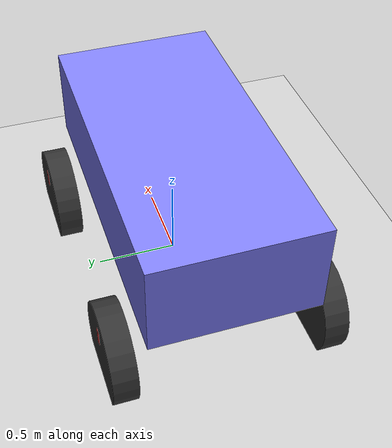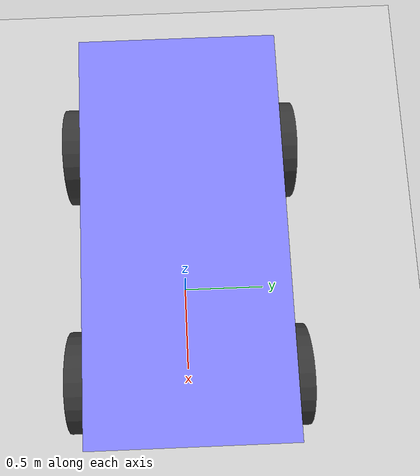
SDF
<?xml version="1.0" ?>
<sdf version="1.8">
  <world name="demo">
    <plugin
      filename="ignition-gazebo-physics-system"
      name="ignition::gazebo::systems::Physics">
    </plugin>
    <plugin
      filename="ignition-gazebo-sensors-system"
      name="ignition::gazebo::systems::Sensors">
      <render_engine>ogre2</render_engine>
    </plugin>
    <plugin
      filename="ignition-gazebo-scene-broadcaster-system"
      name="ignition::gazebo::systems::SceneBroadcaster">
    </plugin>
    <plugin
      filename="ignition-gazebo-user-commands-system"
      name="ignition::gazebo::systems::UserCommands">
    </plugin>
    <plugin
      filename="BasicSystem"
      name="ros_gz_example_gazebo::BasicSystem">
    </plugin>
    <plugin
      filename="FullSystem"
      name="ros_gz_example_gazebo::FullSystem">
    </plugin>

    <light name="sun" type="directional">
      <cast_shadows>true</cast_shadows>
      <pose>0 0 10 0 0 0</pose>
      <diffuse>0.8 0.8 0.8 1</diffuse>
      <specular>0.2 0.2 0.2 1</specular>
      <attenuation>
        <range>1000</range>
        <constant>0.9</constant>
        <linear>0.01</linear>
        <quadratic>0.001</quadratic>
      </attenuation>
      <direction>-0.5 0.1 -0.9</direction>
    </light>

    <model name="ground_plane">
      <static>true</static>
      <link name="link">
        <collision name="collision">
          <geometry>
            <plane>
              <normal>0 0 1</normal>
              <size>100 100</size>
            </plane>
          </geometry>
        </collision>
        <visual name="visual">
          <geometry>
            <plane>
              <normal>0 0 1</normal>
              <size>100 100</size>
            </plane>
          </geometry>
          <material>
            <ambient>0.8 0.8 0.8 1</ambient>
            <diffuse>0.8 0.8 0.8 1</diffuse>
            <specular>0.8 0.8 0.8 1</specular>
          </material>
        </visual>
      </link>
    </model>

    <model name="diff_drive">
      <self_collide>true</self_collide>
      <pose>0 0 0.35 0 0 0</pose>
      <include merge="true">
        <uri>package://ros_gz_example_description/models/diff_drive</uri>
      </include>

      <plugin
        filename="ignition-gazebo-joint-state-publisher-system"
        name="ignition::gazebo::systems::JointStatePublisher">
      </plugin>

      <plugin
        filename="ignition-gazebo-pose-publisher-system"
        name="ignition::gazebo::systems::PosePublisher">
        <publish_link_pose>true</publish_link_pose>
        <use_pose_vector_msg>true</use_pose_vector_msg>
        <static_publisher>true</static_publisher>
        <static_update_frequency>1</static_update_frequency>
      </plugin>

      <plugin
        filename="ignition-gazebo-odometry-publisher-system"
        name="ignition::gazebo::systems::OdometryPublisher">
        <odom_frame>diff_drive/odom</odom_frame>
        <robot_base_frame>diff_drive</robot_base_frame>
      </plugin>
    </model>
  </world>
</sdf>

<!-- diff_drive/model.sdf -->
<sdf version="1.8">
  <model name='swerve_drive'>

    <!-- =========================== CHASSIS =========================== -->
    <link name='chassis'>
      <pose>-0.151427 0 0.43 0 0 0</pose>
      <inertial>
        <mass>1.14395</mass>
        <inertia>
          <ixx>0.126164</ixx>
          <ixy>0</ixy>
          <ixz>0</ixz>
          <iyy>0.416519</iyy>
          <iyz>0</iyz>
          <izz>0.481014</izz>
        </inertia>
      </inertial>
      <visual name='visual_chassis'>
        <geometry>
          <box>
            <size>2.01142 1 0.568726</size>
          </box>
        </geometry>
        <material>
          <ambient>0.5 0.5 1.0 1</ambient>
          <diffuse>0.5 0.5 1.0 1</diffuse>
          <specular>0.0 0.0 1.0 1</specular>
        </material>
      </visual>
      <collision name='collision_chassis'>
        <geometry>
          <box>
            <size>2.01142 1 0.568726</size>
          </box>
        </geometry>
      </collision>
    </link>

    <!-- =========================== LIDAR =========================== -->
    <link name="lidar_link">
      <pose>0 0 0.5 0 0 0</pose>
      <inertial>
        <mass>0.1</mass>
        <inertia>
          <ixx>0.000166667</ixx>
          <iyy>0.000166667</iyy>
          <izz>0.000166667</izz>
        </inertia>
      </inertial>
      <collision name="collision">
        <geometry>
          <box>
            <size>0.1 0.1 0.1</size>
          </box>
        </geometry>
      </collision>
      <visual name="visual">
        <geometry>
          <box>
            <size>0.1 0.1 0.1</size>
          </box>
        </geometry>
      </visual>
      <sensor name='gpu_lidar' type='gpu_lidar'>
        <pose>0 0 0 0 0 0</pose>
        <topic>scan</topic>
        <ignition_frame_id>swerve_drive/lidar_link</ignition_frame_id>
        <update_rate>10</update_rate>
        <lidar>
          <scan>
            <horizontal>
              <samples>640</samples>
              <resolution>1</resolution>
              <min_angle>-1.396263</min_angle>
              <max_angle>1.396263</max_angle>
            </horizontal>
            <vertical>
              <samples>1</samples>
              <resolution>1</resolution>
              <min_angle>0.0</min_angle>
              <max_angle>0.0</max_angle>
            </vertical>
          </scan>
          <range>
            <min>0.08</min>
            <max>10.0</max>
            <resolution>0.01</resolution>
          </range>
        </lidar>
        <visualize>true</visualize>
      </sensor>
    </link>

    <joint name='lidar_joint' type='fixed'>
      <parent>chassis</parent>
      <child>lidar_link</child>
    </joint>

    <link name='front_left_steering_link'>
      <pose>0.554283 0.625029 -0.025 0 0 0</pose>
      <inertial>
        <mass>0.5</mass>
        <inertia>
          <ixx>0.001</ixx>
          <ixy>0</ixy>
          <ixz>0</ixz>
          <iyy>0.001</iyy>
          <iyz>0</iyz>
          <izz>0.001</izz>
        </inertia>
      </inertial>
      <visual name='visual_front_left_steering'>
        <geometry>
          <cylinder>
            <radius>0.08</radius>
            <length>0.1</length>
          </cylinder>
        </geometry>
        <material>
          <ambient>0.8 0.2 0.2 1</ambient>
          <diffuse>0.8 0.2 0.2 1</diffuse>
          <specular>0.2 0.2 0.2 1</specular>
        </material>
      </visual>
      <collision name='collision_front_left_steering'>
        <geometry>
          <cylinder>
            <radius>0.08</radius>
            <length>0.1</length>
          </cylinder>
        </geometry>
      </collision>
    </link>

    <link name='front_left_wheel'>
      <pose>0.554283 0.625029 -0.175 -1.5707 0 0</pose>
      <inertial>
        <mass>2</mass>
        <inertia>
          <ixx>0.145833</ixx>
          <ixy>0</ixy>
          <ixz>0</ixz>
          <iyy>0.145833</iyy>
          <iyz>0</iyz>
          <izz>0.125</izz>
        </inertia>
      </inertial>
      <visual name='visual_front_left_wheel'>
        <geometry>
          <cylinder>
            <radius>0.3</radius>
            <length>0.15</length>
          </cylinder>
        </geometry>
        <material>
          <ambient>0.2 0.2 0.2 1</ambient>
          <diffuse>0.2 0.2 0.2 1</diffuse>
          <specular>0.2 0.2 0.2 1</specular>
        </material>
      </visual>
      <collision name='collision_front_left_wheel'>
        <geometry>
          <cylinder>
            <radius>0.3</radius>
            <length>0.15</length>
          </cylinder>
        </geometry>
        <surface>
          <friction>
            <ode>
              <mu>1.2</mu>
              <mu2>1.0</mu2>
              <fdir1>0 0 1</fdir1>
              <slip1>0.0</slip1>
              <slip2>0.0</slip2>
            </ode>
          </friction>
          <contact>
            <ode>
              <kp>1e6</kp>
              <kd>100</kd>
              <min_depth>0.001</min_depth>
            </ode>
          </contact>
        </surface>
      </collision>
    </link>

    <joint name='front_left_steering_joint' type='revolute'>
      <parent>chassis</parent>
      <child>front_left_steering_link</child>
      <axis>
        <xyz>0 0 1</xyz>
        <limit>
          <lower>-1e16</lower>
          <upper>1e16</upper>
          <effort>50</effort>
          <velocity>5</velocity>
        </limit>
        <dynamics>
          <damping>0.2</damping>
          <friction>0.05</friction>
        </dynamics>
      </axis>
    </joint>

    <joint name='front_left_wheel_joint' type='revolute'>
      <parent>front_left_steering_link</parent>
      <child>front_left_wheel</child>
      <axis>
        <xyz>0 0 1</xyz>
        <limit>
          <lower>-1.79769e+308</lower>
          <upper>1.79769e+308</upper>
          <effort>50</effort>
          <velocity>50</velocity>
        </limit>
        <dynamics>
          <damping>0.05</damping>
          <friction>0.02</friction>
        </dynamics>
      </axis>
    </joint>

    <link name='front_right_steering_link'>
      <pose>0.554283 -0.625029 -0.025 0 0 0</pose>
      <inertial>
        <mass>0.5</mass>
        <inertia>
          <ixx>0.001</ixx>
          <ixy>0</ixy>
          <ixz>0</ixz>
          <iyy>0.001</iyy>
          <iyz>0</iyz>
          <izz>0.001</izz>
        </inertia>
      </inertial>
      <visual name='visual_front_right_steering'>
        <geometry>
          <cylinder>
            <radius>0.08</radius>
            <length>0.1</length>
          </cylinder>
        </geometry>
        <material>
          <ambient>0.8 0.2 0.2 1</ambient>
          <diffuse>0.8 0.2 0.2 1</diffuse>
          <specular>0.2 0.2 0.2 1</specular>
        </material>
      </visual>
      <collision name='collision_front_right_steering'>
        <geometry>
          <cylinder>
            <radius>0.08</radius>
            <length>0.1</length>
          </cylinder>
        </geometry>
      </collision>
    </link>

    <link name='front_right_wheel'>
      <pose>0.554283 -0.625029 -0.175 -1.5707 0 0</pose>
      <inertial>
        <mass>2</mass>
        <inertia>
          <ixx>0.145833</ixx>
          <ixy>0</ixy>
          <ixz>0</ixz>
          <iyy>0.145833</iyy>
          <iyz>0</iyz>
          <izz>0.125</izz>
        </inertia>
      </inertial>
      <visual name='visual_front_right_wheel'>
        <geometry>
          <cylinder>
            <radius>0.3</radius>
            <length>0.15</length>
          </cylinder>
        </geometry>
        <material>
          <ambient>0.2 0.2 0.2 1</ambient>
          <diffuse>0.2 0.2 0.2 1</diffuse>
          <specular>0.2 0.2 0.2 1</specular>
        </material>
      </visual>
      <collision name='collision_front_right_wheel'>
        <geometry>
          <cylinder>
            <radius>0.3</radius>
            <length>0.15</length>
          </cylinder>
        </geometry>
        <surface>
          <friction>
            <ode>
              <mu>1.2</mu>
              <mu2>1.0</mu2>
              <fdir1>0 0 1</fdir1>
              <slip1>0.0</slip1>
              <slip2>0.0</slip2>
            </ode>
          </friction>
          <contact>
            <ode>
              <kp>1e6</kp>
              <kd>100</kd>
              <min_depth>0.001</min_depth>
            </ode>
          </contact>
        </surface>
      </collision>
    </link>

    <joint name='front_right_steering_joint' type='revolute'>
      <parent>chassis</parent>
      <child>front_right_steering_link</child>
      <axis>
        <xyz>0 0 1</xyz>
        <limit>
          <lower>-1e16</lower>
          <upper>1e16</upper>
          <effort>50</effort>
          <velocity>5</velocity>
        </limit>
        <dynamics>
          <damping>0.2</damping>
          <friction>0.05</friction>
        </dynamics>
      </axis>
    </joint>

    <joint name='front_right_wheel_joint' type='revolute'>
      <parent>front_right_steering_link</parent>
      <child>front_right_wheel</child>
      <axis>
        <xyz>0 0 1</xyz>
        <limit>
          <lower>-1.79769e+308</lower>
          <upper>1.79769e+308</upper>
          <effort>50</effort>
          <velocity>50</velocity>
        </limit>
        <dynamics>
          <damping>0.05</damping>
          <friction>0.02</friction>
        </dynamics>
      </axis>
    </joint>

    <link name='back_left_steering_link'>
      <pose>-0.857138 0.625029 -0.025 0 0 0</pose>
      <inertial>
        <mass>0.5</mass>
        <inertia>
          <ixx>0.001</ixx>
          <ixy>0</ixy>
          <ixz>0</ixz>
          <iyy>0.001</iyy>
          <iyz>0</iyz>
          <izz>0.001</izz>
        </inertia>
      </inertial>
      <visual name='visual_back_left_steering'>
        <geometry>
          <cylinder>
            <radius>0.08</radius>
            <length>0.1</length>
          </cylinder>
        </geometry>
        <material>
          <ambient>0.8 0.2 0.2 1</ambient>
          <diffuse>0.8 0.2 0.2 1</diffuse>
          <specular>0.2 0.2 0.2 1</specular>
        </material>
      </visual>
      <collision name='collision_back_left_steering'>
        <geometry>
          <cylinder>
            <radius>0.08</radius>
            <length>0.1</length>
          </cylinder>
        </geometry>
      </collision>
    </link>

    <link name='back_left_wheel'>
      <pose>-0.857138 0.625029 -0.175 -1.5707 0 0</pose>
      <inertial>
        <mass>2</mass>
        <inertia>
          <ixx>0.145833</ixx>
          <ixy>0</ixy>
          <ixz>0</ixz>
          <iyy>0.145833</iyy>
          <iyz>0</iyz>
          <izz>0.125</izz>
        </inertia>
      </inertial>
      <visual name='visual_back_left_wheel'>
        <geometry>
          <cylinder>
            <radius>0.3</radius>
            <length>0.15</length>
          </cylinder>
        </geometry>
        <material>
          <ambient>0.2 0.2 0.2 1</ambient>
          <diffuse>0.2 0.2 0.2 1</diffuse>
          <specular>0.2 0.2 0.2 1</specular>
        </material>
      </visual>
      <collision name='collision_back_left_wheel'>
        <geometry>
          <cylinder>
            <radius>0.3</radius>
            <length>0.15</length>
          </cylinder>
        </geometry>
        <surface>
          <friction>
            <ode>
              <mu>1.2</mu>
              <mu2>1.0</mu2>
              <fdir1>0 0 1</fdir1>
              <slip1>0.0</slip1>
              <slip2>0.0</slip2>
            </ode>
          </friction>
          <contact>
            <ode>
              <kp>1e6</kp>
              <kd>100</kd>
              <min_depth>0.001</min_depth>
            </ode>
          </contact>
        </surface>
      </collision>
    </link>

    <joint name='back_left_steering_joint' type='revolute'>
      <parent>chassis</parent>
      <child>back_left_steering_link</child>
      <axis>
        <xyz>0 0 1</xyz>
        <limit>
          <lower>-1e16</lower>
          <upper>1e16</upper>
          <effort>50</effort>
          <velocity>5</velocity>
        </limit>
        <dynamics>
          <damping>0.2</damping>
          <friction>0.05</friction>
        </dynamics>
      </axis>
    </joint>

    <joint name='back_left_wheel_joint' type='revolute'>
      <parent>back_left_steering_link</parent>
      <child>back_left_wheel</child>
      <axis>
        <xyz>0 0 1</xyz>
        <limit>
          <lower>-1.79769e+308</lower>
          <upper>1.79769e+308</upper>
          <effort>50</effort>
          <velocity>50</velocity>
        </limit>
        <dynamics>
          <damping>0.05</damping>
          <friction>0.02</friction>
        </dynamics>
      </axis>
    </joint>

    <link name='back_right_steering_link'>
      <pose>-0.857138 -0.625029 -0.025 0 0 0</pose>
      <inertial>
        <mass>0.5</mass>
        <inertia>
          <ixx>0.001</ixx>
          <ixy>0</ixy>
          <ixz>0</ixz>
          <iyy>0.001</iyy>
          <iyz>0</iyz>
          <izz>0.001</izz>
        </inertia>
      </inertial>
      <visual name='visual_back_right_steering'>
        <geometry>
          <cylinder>
            <radius>0.08</radius>
            <length>0.1</length>
          </cylinder>
        </geometry>
        <material>
          <ambient>0.8 0.2 0.2 1</ambient>
          <diffuse>0.8 0.2 0.2 1</diffuse>
          <specular>0.2 0.2 0.2 1</specular>
        </material>
      </visual>
      <collision name='collision_back_right_steering'>
        <geometry>
          <cylinder>
            <radius>0.08</radius>
            <length>0.1</length>
          </cylinder>
        </geometry>
      </collision>
    </link>

    <link name='back_right_wheel'>
      <pose>-0.857138 -0.625029 -0.175 -1.5707 0 0</pose>
      <inertial>
        <mass>2</mass>
        <inertia>
          <ixx>0.145833</ixx>
          <ixy>0</ixy>
          <ixz>0</ixz>
          <iyy>0.145833</iyy>
          <iyz>0</iyz>
          <izz>0.125</izz>
        </inertia>
      </inertial>
      <visual name='visual_back_right_wheel'>
        <geometry>
          <cylinder>
            <radius>0.3</radius>
            <length>0.15</length>
          </cylinder>
        </geometry>
        <material>
          <ambient>0.2 0.2 0.2 1</ambient>
          <diffuse>0.2 0.2 0.2 1</diffuse>
          <specular>0.2 0.2 0.2 1</specular>
        </material>
      </visual>
      <collision name='collision_back_right_wheel'>
        <geometry>
          <cylinder>
            <radius>0.3</radius>
            <length>0.15</length>
          </cylinder>
        </geometry>
        <surface>
          <friction>
            <ode>
              <mu>1.2</mu>
              <mu2>1.0</mu2>
              <fdir1>0 0 1</fdir1>
              <slip1>0.0</slip1>
              <slip2>0.0</slip2>
            </ode>
          </friction>
          <contact>
            <ode>
              <kp>1e6</kp>
              <kd>100</kd>
              <min_depth>0.001</min_depth>
            </ode>
          </contact>
        </surface>
      </collision>
    </link>

    <joint name='back_right_steering_joint' type='revolute'>
      <parent>chassis</parent>
      <child>back_right_steering_link</child>
      <axis>
        <xyz>0 0 1</xyz>
        <limit>
          <lower>-1e16</lower>
          <upper>1e16</upper>
          <effort>50</effort>
          <velocity>5</velocity>
        </limit>
        <dynamics>
          <damping>0.2</damping>
          <friction>0.05</friction>
        </dynamics>
      </axis>
    </joint>

    <joint name='back_right_wheel_joint' type='revolute'>
      <parent>back_right_steering_link</parent>
      <child>back_right_wheel</child>
      <axis>
        <xyz>0 0 1</xyz>
        <limit>
          <lower>-1.79769e+308</lower>
          <upper>1.79769e+308</upper>
          <effort>50</effort>
          <velocity>50</velocity>
        </limit>
        <dynamics>
          <damping>0.05</damping>
          <friction>0.02</friction>
        </dynamics>
      </axis>
    </joint>

    <!-- =========================== CONTROLLER =========================== -->
    <plugin
      filename="SwerveSystem"
      name="ros_gz_example_gazebo::SwerveSystem">

      <front_left_steering_joint>front_left_steering_joint</front_left_steering_joint>
      <front_left_wheel_joint>front_left_wheel_joint</front_left_wheel_joint>

      <front_right_steering_joint>front_right_steering_joint</front_right_steering_joint>
      <front_right_wheel_joint>front_right_wheel_joint</front_right_wheel_joint>

      <back_left_steering_joint>back_left_steering_joint</back_left_steering_joint>
      <back_left_wheel_joint>back_left_wheel_joint</back_left_wheel_joint>

      <back_right_steering_joint>back_right_steering_joint</back_right_steering_joint>
      <back_right_wheel_joint>back_right_wheel_joint</back_right_wheel_joint>

      <!-- geometry: distance between front/back axles and left/right wheels -->
      <wheel_base>1.41142</wheel_base>
      <track_width>1.250058</track_width>
      <wheel_radius>0.3</wheel_radius>

      <!-- friction / traction model params (consumed by controller for
           slip-aware velocity limiting, not just the ODE surface above) -->
      <wheel_friction_coefficient>1.2</wheel_friction_coefficient>
      <max_wheel_torque>20</max_wheel_torque>

      <odom_publish_frequency>50</odom_publish_frequency>

      <max_linear_acceleration>1</max_linear_acceleration>
      <min_linear_acceleration>-1</min_linear_acceleration>
      <max_angular_acceleration>2</max_angular_acceleration>
      <min_angular_acceleration>-2</min_angular_acceleration>

      <max_linear_velocity>0.5</max_linear_velocity>
      <min_linear_velocity>-0.5</min_linear_velocity>
      <max_angular_velocity>1</max_angular_velocity>
      <min_angular_velocity>-1</min_angular_velocity>

      <!-- max steering rate of each module, rad/s -->
      <max_steering_velocity>5</max_steering_velocity>
    </plugin>

  </model>
</sdf>
